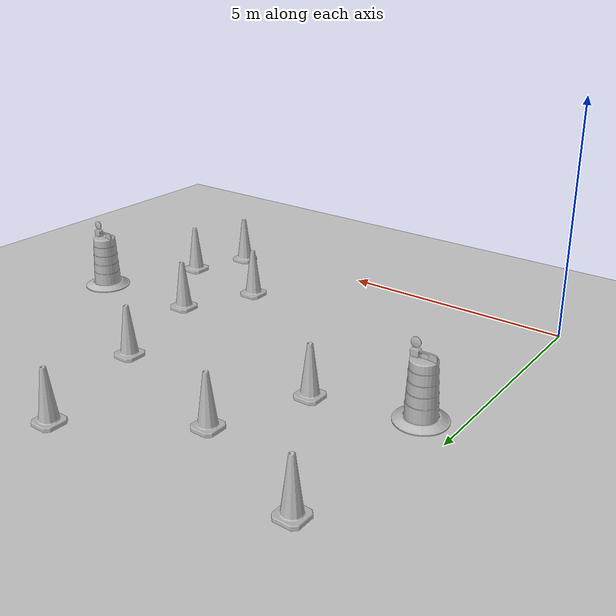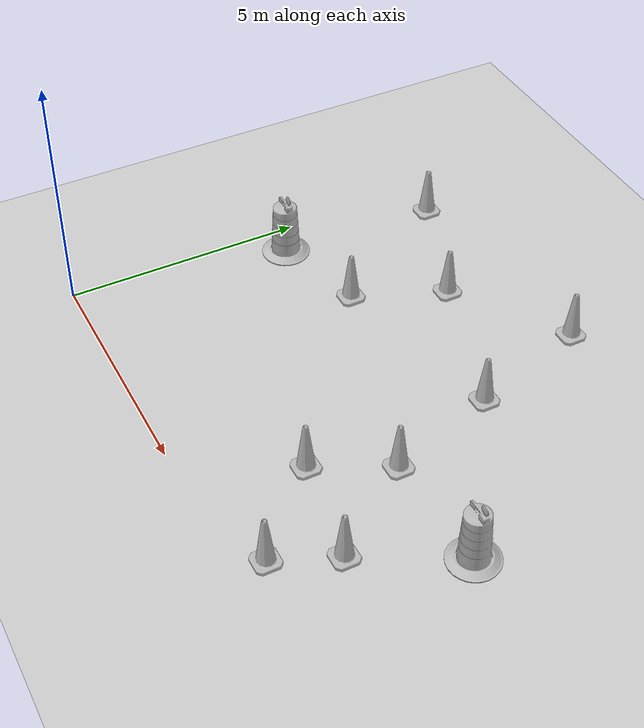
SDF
<sdf version="1.7">
 <world name="default">
  <light name="sun" type="directional">
   <pose>0 0 10 0 -0 0</pose>
   <diffuse>0.8 0.8 0.8 1</diffuse>
   <specular>0.2 0.2 0.2 1</specular>
   <attenuation>
    <range>1000</range>
    <constant>0.9</constant>
    <linear>0.01</linear>
    <quadratic>0.001</quadratic>
   </attenuation>
   <direction>-0.5 0.1 -0.9</direction>
   <spot><inner_angle>0</inner_angle><outer_angle>0</outer_angle><falloff>0</falloff></spot>
  </light>
  <model name="ground_plane">
   <static>1</static>
   <link name="link">
    <collision name="collision">
     <geometry><plane><normal>0 0 1</normal><size>100 100</size></plane></geometry>
     <surface>
      <contact><collide_bitmask>65535</collide_bitmask></contact>
      <friction><ode><mu>100</mu><mu2>50</mu2></ode></friction>
     </surface>
    </collision>
    <visual name="visual">
     <cast_shadows>0</cast_shadows>
     <geometry><plane><normal>0 0 1</normal><size>100 100</size></plane></geometry>
     <material>
      <script><uri>file://media/materials/scripts/gazebo.material</uri><name>Gazebo/Grey</name></script>
     </material>
    </visual>
   </link>
  </model>
  <gravity>0 0 -9.8</gravity>
  <magnetic_field>6e-06 2.3e-05 -4.2e-05</magnetic_field>
  <atmosphere type="adiabatic"/>
  <physics type="ode">
   <max_step_size>0.001</max_step_size>
   <real_time_factor>1</real_time_factor>
   <real_time_update_rate>1000</real_time_update_rate>
  </physics>
  <scene><ambient>0.4 0.4 0.4 1</ambient><background>0.7 0.7 0.7 1</background><shadows>1</shadows></scene>
  <spherical_coordinates>
   <surface_model>EARTH_WGS84</surface_model>
   <latitude_deg>0</latitude_deg>
   <longitude_deg>0</longitude_deg>
   <elevation>0</elevation>
   <heading_deg>0</heading_deg>
  </spherical_coordinates>
  <model name="Construction Cone">
   <link name="link">
    <collision name="collision">
     <geometry>
      <mesh><scale>10 10 10</scale><uri>model://construction_cone/meshes/construction_cone.dae</uri></mesh>
     </geometry>
    </collision>
    <visual name="visual">
     <geometry>
      <mesh><scale>10 10 10</scale><uri>model://construction_cone/meshes/construction_cone.dae</uri></mesh>
     </geometry>
    </visual>
    <inertial>
     <inertia><ixx>1</ixx><ixy>0</ixy><ixz>0</ixz><iyy>1</iyy><iyz>0</iyz><izz>1</izz></inertia>
     <mass>1</mass>
    </inertial>
   </link>
   <pose>2.67023 5.09091 -0 0 -0 0</pose>
  </model>
  <model name="Construction Cone_1">
   <link name="link">
    <collision name="collision">
     <geometry>
      <mesh><scale>10 10 10</scale><uri>model://construction_cone/meshes/construction_cone.dae</uri></mesh>
     </geometry>
    </collision>
    <visual name="visual">
     <geometry>
      <mesh><scale>10 10 10</scale><uri>model://construction_cone/meshes/construction_cone.dae</uri></mesh>
     </geometry>
    </visual>
    <inertial>
     <inertia><ixx>1</ixx><ixy>0</ixy><ixz>0</ixz><iyy>1</iyy><iyz>0</iyz><izz>1</izz></inertia>
     <mass>1</mass>
    </inertial>
   </link>
   <pose>6.47274 2.16651 -0 0 -1e-06 0</pose>
  </model>
  <model name="Construction Cone_3">
   <link name="link">
    <collision name="collision">
     <geometry>
      <mesh><scale>10 10 10</scale><uri>model://construction_cone/meshes/construction_cone.dae</uri></mesh>
     </geometry>
    </collision>
    <visual name="visual">
     <geometry>
      <mesh><scale>10 10 10</scale><uri>model://construction_cone/meshes/construction_cone.dae</uri></mesh>
     </geometry>
    </visual>
    <inertial>
     <inertia><ixx>1</ixx><ixy>0</ixy><ixz>0</ixz><iyy>1</iyy><iyz>0</iyz><izz>1</izz></inertia>
     <mass>1</mass>
    </inertial>
   </link>
   <pose>7.23921 3.66908 -0 0 -0 0</pose>
  </model>
  <model name="Construction Cone_4">
   <link name="link">
    <collision name="collision">
     <geometry>
      <mesh><scale>10 10 10</scale><uri>model://construction_cone/meshes/construction_cone.dae</uri></mesh>
     </geometry>
    </collision>
    <visual name="visual">
     <geometry>
      <mesh><scale>10 10 10</scale><uri>model://construction_cone/meshes/construction_cone.dae</uri></mesh>
     </geometry>
    </visual>
    <inertial>
     <inertia><ixx>1</ixx><ixy>0</ixy><ixz>0</ixz><iyy>1</iyy><iyz>0</iyz><izz>1</izz></inertia>
     <mass>1</mass>
    </inertial>
   </link>
   <pose>3.43828 6.95204 -0 -0 -0 -0</pose>
  </model>
  <model name="Construction Cone_0">
   <link name="link">
    <collision name="collision">
     <geometry>
      <mesh><scale>10 10 10</scale><uri>model://construction_cone/meshes/construction_cone.dae</uri></mesh>
     </geometry>
    </collision>
    <visual name="visual">
     <geometry>
      <mesh><scale>10 10 10</scale><uri>model://construction_cone/meshes/construction_cone.dae</uri></mesh>
     </geometry>
    </visual>
    <inertial>
     <inertia><ixx>1</ixx><ixy>0</ixy><ixz>0</ixz><iyy>1</iyy><iyz>0</iyz><izz>1</izz></inertia>
     <mass>1</mass>
    </inertial>
   </link>
   <pose>5.71104 8.47669 -0 0 -0 0</pose>
  </model>
  <model name="Construction Cone_2">
   <link name="link">
    <collision name="collision">
     <geometry>
      <mesh><scale>10 10 10</scale><uri>model://construction_cone/meshes/construction_cone.dae</uri></mesh>
     </geometry>
    </collision>
    <visual name="visual">
     <geometry>
      <mesh><scale>10 10 10</scale><uri>model://construction_cone/meshes/construction_cone.dae</uri></mesh>
     </geometry>
    </visual>
    <inertial>
     <inertia><ixx>1</ixx><ixy>0</ixy><ixz>0</ixz><iyy>1</iyy><iyz>0</iyz><izz>1</izz></inertia>
     <mass>1</mass>
    </inertial>
   </link>
   <pose>6.48321 5.96314 -0 0 -1e-06 0</pose>
  </model>
  <model name="Construction Cone_5">
   <link name="link">
    <collision name="collision">
     <geometry>
      <mesh><scale>10 10 10</scale><uri>model://construction_cone/meshes/construction_cone.dae</uri></mesh>
     </geometry>
    </collision>
    <visual name="visual">
     <geometry>
      <mesh><scale>10 10 10</scale><uri>model://construction_cone/meshes/construction_cone.dae</uri></mesh>
     </geometry>
    </visual>
    <inertial>
     <inertia><ixx>1</ixx><ixy>0</ixy><ixz>0</ixz><iyy>1</iyy><iyz>0</iyz><izz>1</izz></inertia>
     <mass>1</mass>
    </inertial>
   </link>
   <pose>8.60915 1.83866 0 -0 -0 -0</pose>
  </model>
  <model name="Construction Cone_6">
   <link name="link">
    <collision name="collision">
     <geometry>
      <mesh><scale>10 10 10</scale><uri>model://construction_cone/meshes/construction_cone.dae</uri></mesh>
     </geometry>
    </collision>
    <visual name="visual">
     <geometry>
      <mesh><scale>10 10 10</scale><uri>model://construction_cone/meshes/construction_cone.dae</uri></mesh>
     </geometry>
    </visual>
    <inertial>
     <inertia><ixx>1</ixx><ixy>0</ixy><ixz>0</ixz><iyy>1</iyy><iyz>0</iyz><izz>1</izz></inertia>
     <mass>1</mass>
    </inertial>
   </link>
   <pose>0.871558 7.93598 0 -0 -0 -0</pose>
  </model>
  <model name="Construction Barrel">
   <link name="link">
    <inertial>
     <pose>0 0 0.4 0 -0 0</pose>
     <mass>500</mass>
     <inertia><ixx>51.2096</ixx><iyy>51.2096</iyy><izz>25</izz><ixy>0</ixy><ixz>0</ixz><iyz>0</iyz></inertia>
    </inertial>
    <collision name="collision">
     <geometry><mesh><uri>model://construction_barrel/meshes/construction_barrel.dae</uri></mesh></geometry>
    </collision>
    <visual name="visual">
     <geometry><mesh><uri>model://construction_barrel/meshes/construction_barrel.dae</uri></mesh></geometry>
    </visual>
   </link>
   <pose>9.63759 3.79471 2e-06 2e-06 4e-06 -8e-06</pose>
  </model>
  <model name="Construction Barrel_0">
   <link name="link">
    <inertial>
     <pose>0 0 0.4 0 -0 0</pose>
     <mass>500</mass>
     <inertia><ixx>51.2096</ixx><iyy>51.2096</iyy><izz>25</izz><ixy>0</ixy><ixz>0</ixz><iyz>0</iyz></inertia>
    </inertial>
    <collision name="collision">
     <geometry><mesh><uri>model://construction_barrel/meshes/construction_barrel.dae</uri></mesh></geometry>
    </collision>
    <visual name="visual">
     <geometry><mesh><uri>model://construction_barrel/meshes/construction_barrel.dae</uri></mesh></geometry>
    </visual>
   </link>
   <pose>0.686596 4.55752 -2e-06 8e-06 -4e-06 -7e-06</pose>
  </model>
  <model name="Construction Cone_7">
   <link name="link">
    <collision name="collision">
     <geometry>
      <mesh><scale>10 10 10</scale><uri>model://construction_cone/meshes/construction_cone.dae</uri></mesh>
     </geometry>
    </collision>
    <visual name="visual">
     <geometry>
      <mesh><scale>10 10 10</scale><uri>model://construction_cone/meshes/construction_cone.dae</uri></mesh>
     </geometry>
    </visual>
    <inertial>
     <inertia><ixx>1</ixx><ixy>0</ixy><ixz>0</ixz><iyy>1</iyy><iyz>0</iyz><izz>1</izz></inertia>
     <mass>1</mass>
    </inertial>
   </link>
   <pose>8.08062 0.605155 -0 0 -1e-06 0</pose>
  </model>
 </world>
</sdf>
